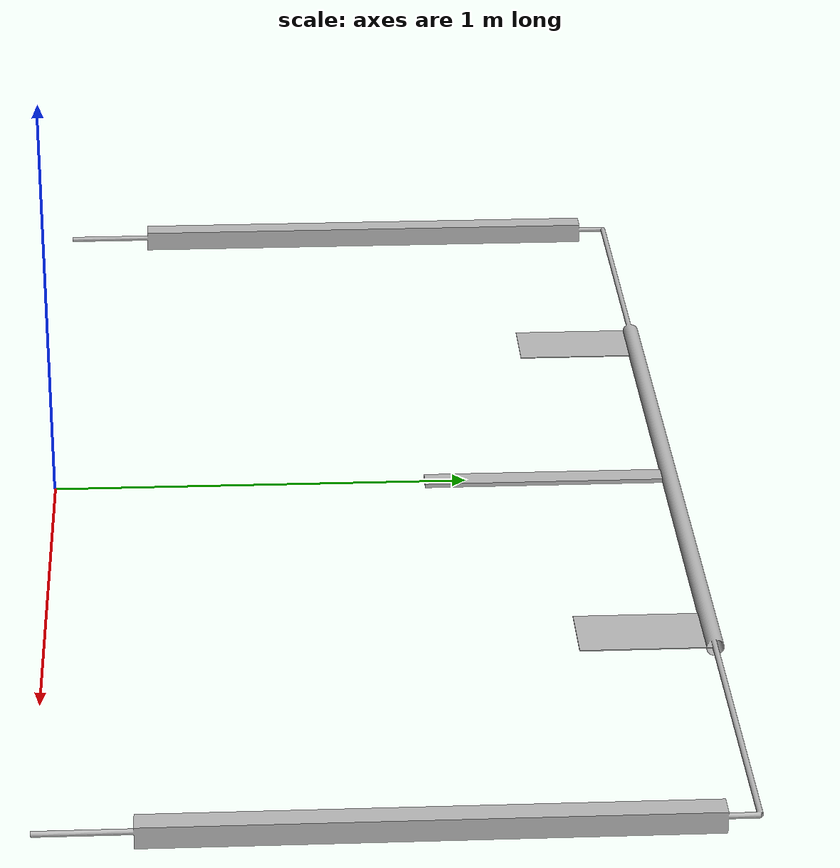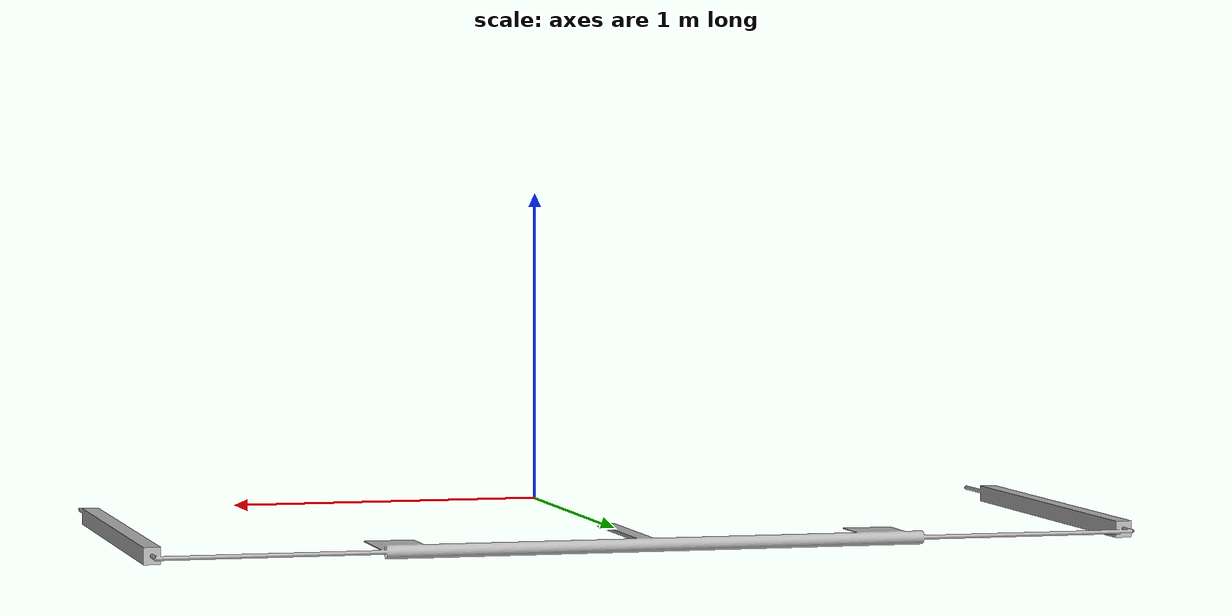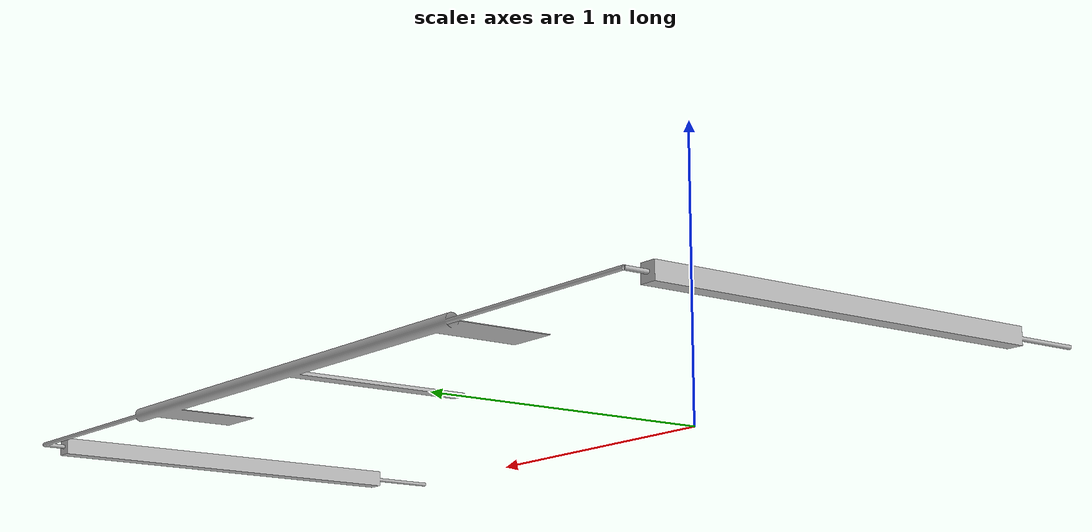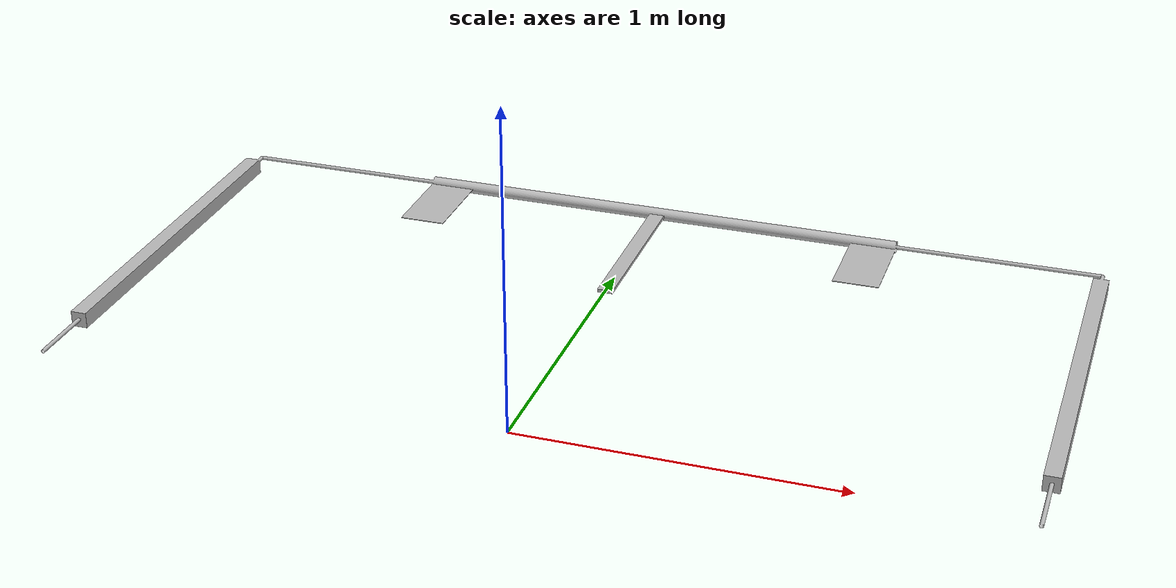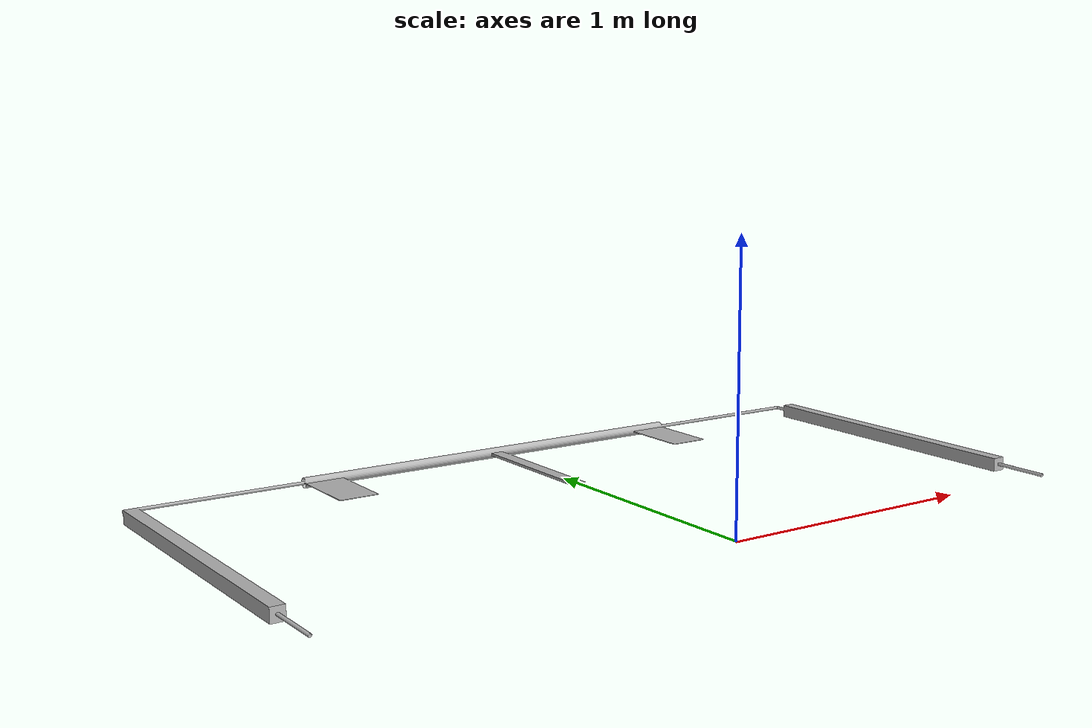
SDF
<?xml version="1.0"?>
<sdf version="1.11">
  <model name="sauvc_gate">
    <link name="link">
    <static>true</static>
    <collision name="gate_collision">
      <pose>0 0 0 0 0 0</pose>
      <geometry>
        <mesh>
          <scale>1 1 1</scale>
          <uri>model://sauvc_gate/gate.dae</uri>
        </mesh>
      </geometry>
    </collision>

    <visual name="gate">
      <cast_shadows>false</cast_shadows>
      <pose>0 0 0 0 0 0</pose>
      <geometry>
        <mesh>
          <scale>1 1 1</scale>
          <uri>model://sauvc_gate/gate.dae</uri>
        </mesh>
      </geometry>
    </visual>
    </link>
  </model>
</sdf>
